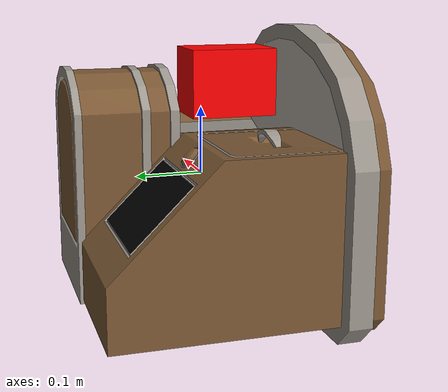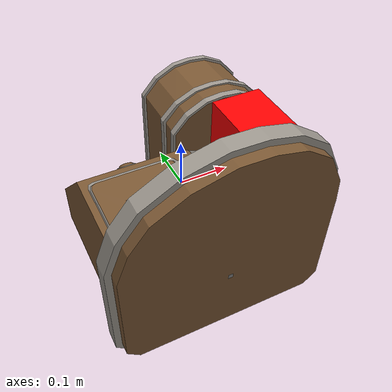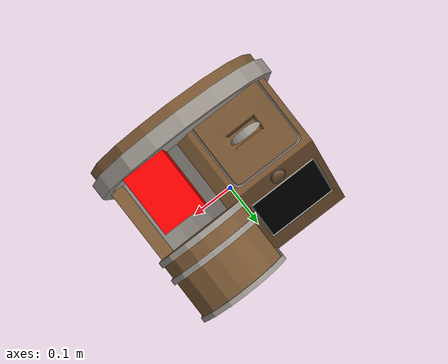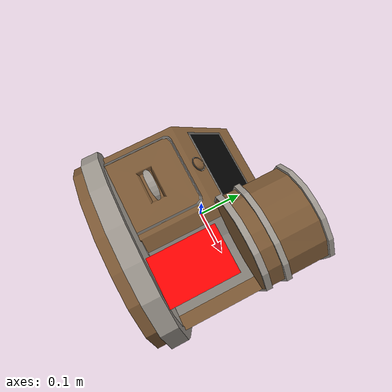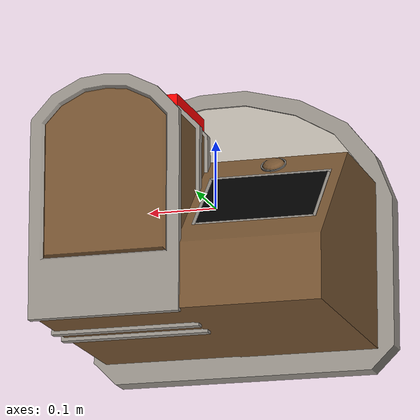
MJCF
<mujoco model="coffee_machine_27">
  <compiler autolimits="true" boundmass="0.01" angle="radian"/>
  <default>
    <default class="/">
      <default class="__VISUAL_MJT__">
        <geom contype="0" conaffinity="0" group="0"/>
      </default>
      <default class="__STRUCTURAL_MJT__">
        <geom contype="8" conaffinity="15" group="4" friction="0.90000000000000002 0.90000000000000002 0.001" solref="0.025000000000000001 1" solimp="0.998 0.998 0.001"/>
      </default>
      <default class="__DYNAMIC_MJT__">
        <geom contype="1" conaffinity="15" group="4" friction="0.90000000000000002 0.90000000000000002 0.001" solref="0.025000000000000001 1" solimp="0.998 0.998 0.001"/>
      </default>
    </default>
  </default>
  <asset>
    <material name="material_coffee_machine_backup_mat" class="/" specular="0.5" shininess="0.5" rgba="0.5 0.5 0.5 1"/>
    <material name="material_Coffee_Machine_Readout_Mat_Off" class="/" specular="0.5" shininess="0.5" rgba="0 0 0 1"/>
    <texture name="Coffee_Machine_Decal_Mat" type="2d" file="Coffee_Machine_Decal_AlbedoTransparency.png"/>
    <material name="material_Coffee_Machine_Decal_Mat" class="/" texture="Coffee_Machine_Decal_Mat" specular="0.5" shininess="0.5" rgba="1 1 1 1"/>
    <texture name="Coffee_Machine_Metal_Mat" type="2d" file="MetalBumpy_AlbedoTransparency.png"/>
    <material name="material_Coffee_Machine_Metal_Mat" class="/" texture="Coffee_Machine_Metal_Mat" specular="0.5" shininess="0.5" rgba="0.66176469999999998 0.66176469999999998 0.66176469999999998 1"/>
    <texture name="Coffee_Machine_Secondary2_Color_Mat" type="2d" file="BrushedIron_AlbedoTransparency.png"/>
    <material name="material_Coffee_Machine_Secondary2_Color_Mat" class="/" texture="Coffee_Machine_Secondary2_Color_Mat" specular="0.5" shininess="0.5" rgba="0.80882350000000003 0.80882350000000003 0.80882350000000003 1"/>
    <texture name="Coffee_Machine_Primary2_Color_Mat" type="2d" file="BumpyPlastic_Albedo.png"/>
    <material name="material_Coffee_Machine_Primary2_Color_Mat" class="/" texture="Coffee_Machine_Primary2_Color_Mat" specular="0.5" shininess="0.5" rgba="0.6323529 0.46849269999999998 0.29292820000000003 1"/>
    <mesh name="coffee_machine_27_coffee_machine_27_0" class="/" file="coffee_machine_27_coffee_machine_27/coffee_machine_27_coffee_machine_27_0.obj" scale="1 1 1"/>
    <mesh name="coffee_machine_27_coffee_machine_27_1" class="/" file="coffee_machine_27_coffee_machine_27/coffee_machine_27_coffee_machine_27_1.obj" scale="1 1 1"/>
    <mesh name="coffee_machine_27_coffee_machine_27_2" class="/" file="coffee_machine_27_coffee_machine_27/coffee_machine_27_coffee_machine_27_2.obj" scale="1 1 1"/>
    <mesh name="coffee_machine_27_coffee_machine_27_3" class="/" file="coffee_machine_27_coffee_machine_27/coffee_machine_27_coffee_machine_27_3.obj" scale="1 1 1"/>
    <mesh name="coffee_machine_27_coffee_machine_27_4" class="/" file="coffee_machine_27_coffee_machine_27/coffee_machine_27_coffee_machine_27_4.obj" scale="1 1 1"/>
    <mesh name="coffee_machine_27_coffee_machine_27_5" class="/" file="coffee_machine_27_coffee_machine_27/coffee_machine_27_coffee_machine_27_5.obj" scale="1 1 1"/>
  </asset>
  <worldbody>
    <body name="coffee_machine_27">
      <joint name="coffee_machine_27_free" class="/" type="free" pos="0 0 0" axis="0 0 1" stiffness="0" range="0 0" armature="0" damping="0.10000000000000001" frictionloss="0"/>
      <body name="coffee_machine_27_coffee_machine_27" pos="-0.00020000000000000001 -0.2171200002682209 -0.059290000000000002" quat="1 0 0 0">
        <geom name="coffee_machine_27_coffee_machine_27_0" class="__VISUAL_MJT__" type="mesh" material="material_coffee_machine_backup_mat" shellinertia="true" mesh="coffee_machine_27_coffee_machine_27_0"/>
        <geom name="coffee_machine_27_coffee_machine_27_1" class="__VISUAL_MJT__" type="mesh" material="material_Coffee_Machine_Readout_Mat_Off" shellinertia="true" mesh="coffee_machine_27_coffee_machine_27_1"/>
        <geom name="coffee_machine_27_coffee_machine_27_2" class="__VISUAL_MJT__" type="mesh" material="material_Coffee_Machine_Decal_Mat" shellinertia="true" mesh="coffee_machine_27_coffee_machine_27_2"/>
        <geom name="coffee_machine_27_coffee_machine_27_3" class="__VISUAL_MJT__" type="mesh" material="material_Coffee_Machine_Metal_Mat" shellinertia="false" mesh="coffee_machine_27_coffee_machine_27_3"/>
        <geom name="coffee_machine_27_coffee_machine_27_4" class="__VISUAL_MJT__" type="mesh" material="material_Coffee_Machine_Secondary2_Color_Mat" shellinertia="false" mesh="coffee_machine_27_coffee_machine_27_4"/>
        <geom name="coffee_machine_27_coffee_machine_27_5" class="__VISUAL_MJT__" type="mesh" material="material_Coffee_Machine_Primary2_Color_Mat" shellinertia="false" mesh="coffee_machine_27_coffee_machine_27_5"/>
        <site name="coffee_machine_27_Receptacle_0" class="/" type="box" rgba="1 0 0 1" size="0.048809345811605453 0.068644583225250244 0.053486809134483337" pos="0.10930000245571136 0.14304459095001221 0.18449999392032623" quat="1 0 0 0"/>
        <geom name="coffee_machine_27_PrimitiveCollider_0" class="__DYNAMIC_MJT__" type="box" size="0.20938229560852051 0.20447400212287903 0.14022979140281677" rgba="0 1 0 1" pos="0.0075051784515380859 0.20447400212287903 -0.016757577657699585" quat="1 0 0 0"/>
        <geom name="coffee_machine_27_PrimitiveCollider_1" class="__DYNAMIC_MJT__" type="box" size="0.11291360855102539 0.080442845821380615 0.17614459991455078" rgba="0 1 0 1" pos="0.11316156387329102 0.31681203842163086 0.043378829956054688" quat="1 0 0 0"/>
        <geom name="coffee_machine_27_PrimitiveCollider_2" class="__DYNAMIC_MJT__" type="box" size="0.22627854347229004 0.030721396207809448 0.2183082103729248" rgba="0 1 0 1" pos="-0.00020337104797363281 0.030018478631973267 0.059289693832397461" quat="1 0 0 0"/>
      </body>
    </body>
  </worldbody>
</mujoco>
